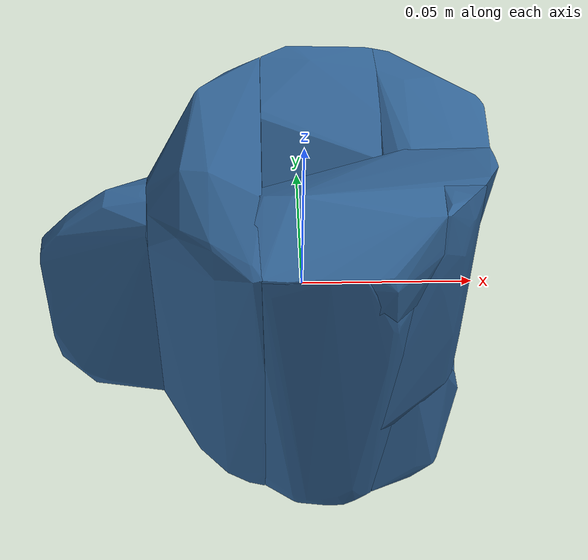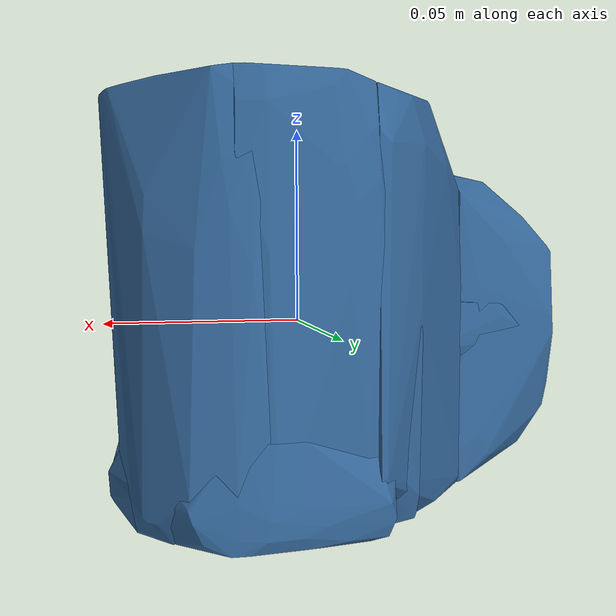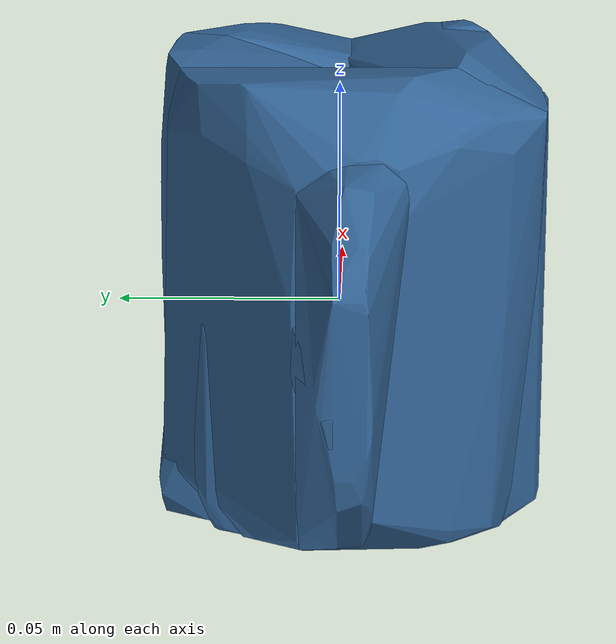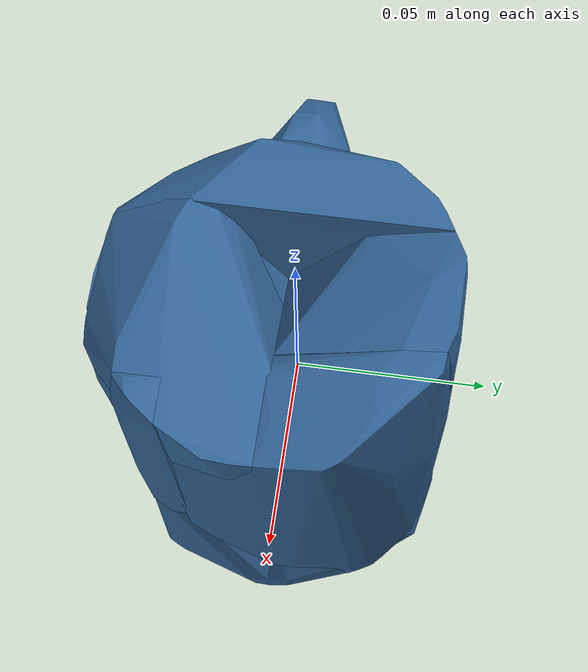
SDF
<?xml version='1.0' encoding='UTF-8'?>
<!-- This SDF was autogenerated by obj_to_drake_sdf.py -->
<sdf version="1.7">
  <model name="mug">
    <link name="mug">
      <inertial>
        <pose>0 0 0 0 0 0</pose>
        <mass>0.05</mass>
        <inertia>
          <ixx>6.0812201e-05</ixx>
          <iyy>6.9270916e-05</iyy>
          <izz>5.2379937e-05</izz>
          <ixy>3.8989106e-07</ixy>
          <ixz>-2.2018353e-06</ixz>
          <iyz>9.4361949e-07</iyz>
        </inertia>
      </inertial>
      <visual name="convex_0">
        <pose>0 0 0 0 0 0</pose>
        <geometry>
          <mesh>
            <uri>mug_convex_0.obj</uri>
          </mesh>
        </geometry>
        <material>
          <diffuse>0.19607843137254902 0.39215686274509803 0.5882352941176471 1</diffuse>
        </material>
      </visual>
      <collision name="convex_0_volume">
        <pose>0 0 0 0 0 0</pose>
        <geometry>
          <mesh>
            <uri>mug_convex_0.obj</uri>
          </mesh>
        </geometry>
        <drake:proximity_properties xmlns:drake="uri:drake">
          <drake:compliant_hydroelastic/>
          <drake:hydroelastic_modulus> 3.0e7 </drake:hydroelastic_modulus>
          <drake:mesh_resolution_hint> 0.02 </drake:mesh_resolution_hint>
          <drake:hunt_crossley_dissipation>10</drake:hunt_crossley_dissipation>
          <drake:mu_dynamic>0.3</drake:mu_dynamic>
        </drake:proximity_properties>
      </collision>
      <visual name="convex_1">
        <pose>0 0 0 0 0 0</pose>
        <geometry>
          <mesh>
            <uri>mug_convex_1.obj</uri>
          </mesh>
        </geometry>
        <material>
          <diffuse>0.19607843137254902 0.39215686274509803 0.5882352941176471 1</diffuse>
        </material>
      </visual>
      <collision name="convex_1_volume">
        <pose>0 0 0 0 0 0</pose>
        <geometry>
          <mesh>
            <uri>mug_convex_1.obj</uri>
          </mesh>
        </geometry>
        <drake:proximity_properties xmlns:drake="uri:drake">
          <drake:compliant_hydroelastic/>
          <drake:hydroelastic_modulus> 3.0e7 </drake:hydroelastic_modulus>
          <drake:mesh_resolution_hint> 0.02 </drake:mesh_resolution_hint>
          <drake:hunt_crossley_dissipation>10</drake:hunt_crossley_dissipation>
          <drake:mu_dynamic>0.3</drake:mu_dynamic>
        </drake:proximity_properties>
      </collision>
      <visual name="convex_2">
        <pose>0 0 0 0 0 0</pose>
        <geometry>
          <mesh>
            <uri>mug_convex_2.obj</uri>
          </mesh>
        </geometry>
        <material>
          <diffuse>0.19607843137254902 0.39215686274509803 0.5882352941176471 1</diffuse>
        </material>
      </visual>
      <collision name="convex_2_volume">
        <pose>0 0 0 0 0 0</pose>
        <geometry>
          <mesh>
            <uri>mug_convex_2.obj</uri>
          </mesh>
        </geometry>
        <drake:proximity_properties xmlns:drake="uri:drake">
          <drake:compliant_hydroelastic/>
          <drake:hydroelastic_modulus> 3.0e7 </drake:hydroelastic_modulus>
          <drake:mesh_resolution_hint> 0.02 </drake:mesh_resolution_hint>
          <drake:hunt_crossley_dissipation>10</drake:hunt_crossley_dissipation>
          <drake:mu_dynamic>0.3</drake:mu_dynamic>
        </drake:proximity_properties>
      </collision>
      <visual name="convex_3">
        <pose>0 0 0 0 0 0</pose>
        <geometry>
          <mesh>
            <uri>mug_convex_3.obj</uri>
          </mesh>
        </geometry>
        <material>
          <diffuse>0.19607843137254902 0.39215686274509803 0.5882352941176471 1</diffuse>
        </material>
      </visual>
      <collision name="convex_3_volume">
        <pose>0 0 0 0 0 0</pose>
        <geometry>
          <mesh>
            <uri>mug_convex_3.obj</uri>
          </mesh>
        </geometry>
        <drake:proximity_properties xmlns:drake="uri:drake">
          <drake:compliant_hydroelastic/>
          <drake:hydroelastic_modulus> 3.0e7 </drake:hydroelastic_modulus>
          <drake:mesh_resolution_hint> 0.02 </drake:mesh_resolution_hint>
          <drake:hunt_crossley_dissipation>10</drake:hunt_crossley_dissipation>
          <drake:mu_dynamic>0.3</drake:mu_dynamic>
        </drake:proximity_properties>
      </collision>
      <visual name="convex_4">
        <pose>0 0 0 0 0 0</pose>
        <geometry>
          <mesh>
            <uri>mug_convex_4.obj</uri>
          </mesh>
        </geometry>
        <material>
          <diffuse>0.19607843137254902 0.39215686274509803 0.5882352941176471 1</diffuse>
        </material>
      </visual>
      <collision name="convex_4_volume">
        <pose>0 0 0 0 0 0</pose>
        <geometry>
          <mesh>
            <uri>mug_convex_4.obj</uri>
          </mesh>
        </geometry>
        <drake:proximity_properties xmlns:drake="uri:drake">
          <drake:compliant_hydroelastic/>
          <drake:hydroelastic_modulus> 3.0e7 </drake:hydroelastic_modulus>
          <drake:mesh_resolution_hint> 0.02 </drake:mesh_resolution_hint>
          <drake:hunt_crossley_dissipation>10</drake:hunt_crossley_dissipation>
          <drake:mu_dynamic>0.3</drake:mu_dynamic>
        </drake:proximity_properties>
      </collision>
      <visual name="convex_5">
        <pose>0 0 0 0 0 0</pose>
        <geometry>
          <mesh>
            <uri>mug_convex_5.obj</uri>
          </mesh>
        </geometry>
        <material>
          <diffuse>0.19607843137254902 0.39215686274509803 0.5882352941176471 1</diffuse>
        </material>
      </visual>
      <collision name="convex_5_volume">
        <pose>0 0 0 0 0 0</pose>
        <geometry>
          <mesh>
            <uri>mug_convex_5.obj</uri>
          </mesh>
        </geometry>
        <drake:proximity_properties xmlns:drake="uri:drake">
          <drake:compliant_hydroelastic/>
          <drake:hydroelastic_modulus> 3.0e7 </drake:hydroelastic_modulus>
          <drake:mesh_resolution_hint> 0.02 </drake:mesh_resolution_hint>
          <drake:hunt_crossley_dissipation>10</drake:hunt_crossley_dissipation>
          <drake:mu_dynamic>0.3</drake:mu_dynamic>
        </drake:proximity_properties>
      </collision>
      <visual name="convex_6">
        <pose>0 0 0 0 0 0</pose>
        <geometry>
          <mesh>
            <uri>mug_convex_6.obj</uri>
          </mesh>
        </geometry>
        <material>
          <diffuse>0.19607843137254902 0.39215686274509803 0.5882352941176471 1</diffuse>
        </material>
      </visual>
      <collision name="convex_6_volume">
        <pose>0 0 0 0 0 0</pose>
        <geometry>
          <mesh>
            <uri>mug_convex_6.obj</uri>
          </mesh>
        </geometry>
        <drake:proximity_properties xmlns:drake="uri:drake">
          <drake:compliant_hydroelastic/>
          <drake:hydroelastic_modulus> 3.0e7 </drake:hydroelastic_modulus>
          <drake:mesh_resolution_hint> 0.02 </drake:mesh_resolution_hint>
          <drake:hunt_crossley_dissipation>10</drake:hunt_crossley_dissipation>
          <drake:mu_dynamic>0.3</drake:mu_dynamic>
        </drake:proximity_properties>
      </collision>
      <visual name="convex_7">
        <pose>0 0 0 0 0 0</pose>
        <geometry>
          <mesh>
            <uri>mug_convex_7.obj</uri>
          </mesh>
        </geometry>
        <material>
          <diffuse>0.19607843137254902 0.39215686274509803 0.5882352941176471 1</diffuse>
        </material>
      </visual>
      <collision name="convex_7_volume">
        <pose>0 0 0 0 0 0</pose>
        <geometry>
          <mesh>
            <uri>mug_convex_7.obj</uri>
          </mesh>
        </geometry>
        <drake:proximity_properties xmlns:drake="uri:drake">
          <drake:compliant_hydroelastic/>
          <drake:hydroelastic_modulus> 3.0e7 </drake:hydroelastic_modulus>
          <drake:mesh_resolution_hint> 0.02 </drake:mesh_resolution_hint>
          <drake:hunt_crossley_dissipation>10</drake:hunt_crossley_dissipation>
          <drake:mu_dynamic>0.3</drake:mu_dynamic>
        </drake:proximity_properties>
      </collision>
      <visual name="convex_8">
        <pose>0 0 0 0 0 0</pose>
        <geometry>
          <mesh>
            <uri>mug_convex_8.obj</uri>
          </mesh>
        </geometry>
        <material>
          <diffuse>0.19607843137254902 0.39215686274509803 0.5882352941176471 1</diffuse>
        </material>
      </visual>
      <collision name="convex_8_volume">
        <pose>0 0 0 0 0 0</pose>
        <geometry>
          <mesh>
            <uri>mug_convex_8.obj</uri>
          </mesh>
        </geometry>
        <drake:proximity_properties xmlns:drake="uri:drake">
          <drake:compliant_hydroelastic/>
          <drake:hydroelastic_modulus> 3.0e7 </drake:hydroelastic_modulus>
          <drake:mesh_resolution_hint> 0.02 </drake:mesh_resolution_hint>
          <drake:hunt_crossley_dissipation>10</drake:hunt_crossley_dissipation>
          <drake:mu_dynamic>0.3</drake:mu_dynamic>
        </drake:proximity_properties>
      </collision>
      <visual name="convex_9">
        <pose>0 0 0 0 0 0</pose>
        <geometry>
          <mesh>
            <uri>mug_convex_9.obj</uri>
          </mesh>
        </geometry>
        <material>
          <diffuse>0.19607843137254902 0.39215686274509803 0.5882352941176471 1</diffuse>
        </material>
      </visual>
      <collision name="convex_9_volume">
        <pose>0 0 0 0 0 0</pose>
        <geometry>
          <mesh>
            <uri>mug_convex_9.obj</uri>
          </mesh>
        </geometry>
        <drake:proximity_properties xmlns:drake="uri:drake">
          <drake:compliant_hydroelastic/>
          <drake:hydroelastic_modulus> 3.0e7 </drake:hydroelastic_modulus>
          <drake:mesh_resolution_hint> 0.02 </drake:mesh_resolution_hint>
          <drake:hunt_crossley_dissipation>10</drake:hunt_crossley_dissipation>
          <drake:mu_dynamic>0.3</drake:mu_dynamic>
        </drake:proximity_properties>
      </collision>
    </link>
  </model>
</sdf>
